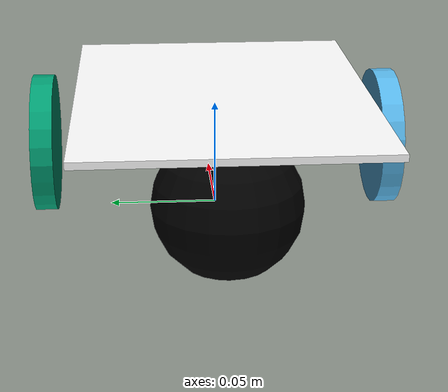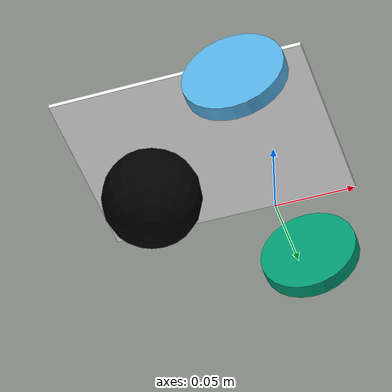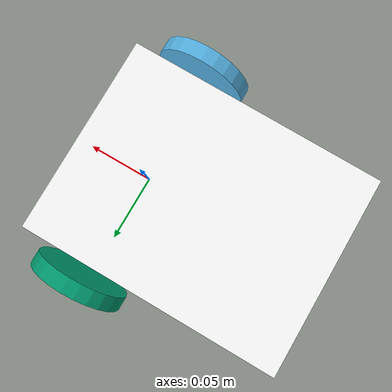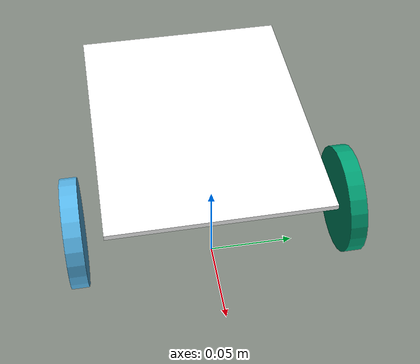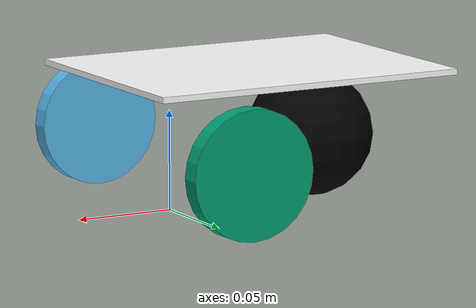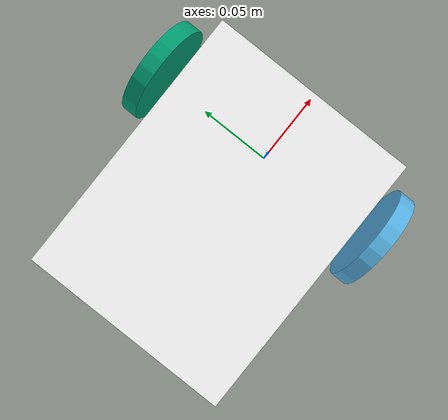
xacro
<?xml version='1.0'?>
<robot name="robot_model">

  <material name="red">
    <color rgba="0.8 0 0 1"/>
  </material>

  <material name="green">
    <color rgba="0 0.8 0 1"/>
  </material>

  <material name="blue">
    <color rgba="0 0 0.8 1"/>
  </material>

  <material name="white">
    <color rgba="1 1 1 1"/>
  </material>

  <material name="black">
    <color rgba="0 0 0 1"/>
  </material>

  <material name="transparent">
    <color rgba="1 1 1 0.1"/>
  </material>

  <!-- Base Link -->
  <link name="base_link">
    <visual>
      <origin xyz="-0.045 0 0.068" rpy="0 0 0" />
      <geometry>
	      <box size="0.164 0.126 0.003"/>
      </geometry>
      <material name="white" />
    </visual>

    <!-- Base collision -->
    <collision>
      <origin xyz="-0.045 0 0.068" rpy="0 0 0" />
      <geometry>
          <box size="0.164 0.126 0.003"/>
      </geometry>
    </collision>

    <!-- Caster -->
    <visual name="caster">
      <origin xyz="-0.08 0 0.032" rpy="0 0 0" />
      <geometry>
        <sphere radius="0.032" />
      </geometry>
      <material name="black" />
    </visual>

    <!-- Caster collision -->
    <collision>
      <origin xyz="-0.08 0 00.032" rpy="0 0 0" />
      <geometry>
        <sphere radius="0.032" />
      </geometry>
    </collision>

  </link>

  <!-- Right Wheel -->
  <link name="right_wheel">
    <visual>
      <origin xyz="0 0 0" rpy="1.570795 0 0" />
      <geometry>
          <cylinder length="0.01" radius="0.032" />
      </geometry>
    </visual>
    <collision>
      <origin xyz="0 0 0" rpy="1.570795 0 0" />
      <geometry>
          <cylinder length="0.027" radius="0.032" />
      </geometry>
    </collision>
  </link>

  <joint name="front_right_wheel_joint" type="continuous">
    <parent link="base_link"/>
    <child link="right_wheel"/>
    <origin xyz="0 -0.08 0.032" rpy="0 0 0" />
    <axis xyz="0 1 0" />
  </joint>

  <!-- Left Wheel -->
  <link name="left_wheel">
    <visual>
      <origin xyz="0 0 0" rpy="1.570795 0 0" />
      <geometry>
          <cylinder length="0.01" radius="0.032" />
      </geometry>
    </visual>
    <collision>
      <origin xyz="0 0 0" rpy="1.570795 0 0" />
      <geometry>
          <cylinder length="0.027" radius="0.032" />
      </geometry>
    </collision>
  </link>

  <joint name="front_left_wheel_joint" type="continuous">
    <parent link="base_link"/>
    <child link="left_wheel"/>
    <origin xyz="0 0.08 0.032" rpy="0 0 0" />
    <axis xyz="0 1 0" />
  </joint>

  <!-- Right Wheel Transmission -->
  <transmission name="front_right_wheel_trans">
    <type>transmission_interface/SimpleTransmission</type>
    <joint name="front_right_wheel_joint">
      <hardwareInterface>hardware_interface/VelocityJointInterface</hardwareInterface>
    </joint>
    <actuator name="front_right_wheel_motor">
      <hardwareInterface>hardware_interface/VelocityJointInterface</hardwareInterface>
      <mechanicalReduction>1</mechanicalReduction>
    </actuator>
  </transmission>

  <!-- Left Wheel Transmission -->
  <transmission name="front_left_wheel_trans">
    <type>transmission_interface/SimpleTransmission</type>
    <joint name="front_left_wheel_joint">
      <hardwareInterface>hardware_interface/VelocityJointInterface</hardwareInterface>
    </joint>
    <actuator name="front_left_wheel_motor">
      <hardwareInterface>hardware_interface/VelocityJointInterface</hardwareInterface>
      <mechanicalReduction>1</mechanicalReduction>
    </actuator>
  </transmission>

</robot>
